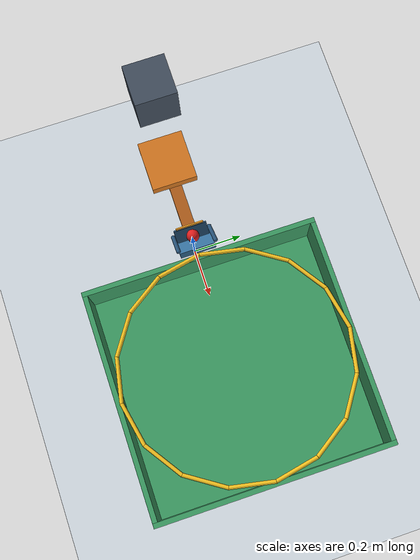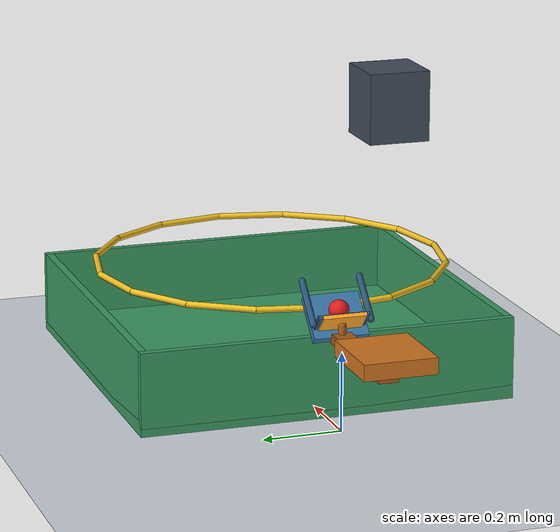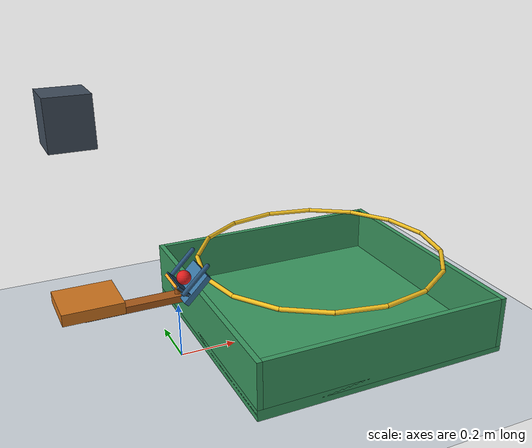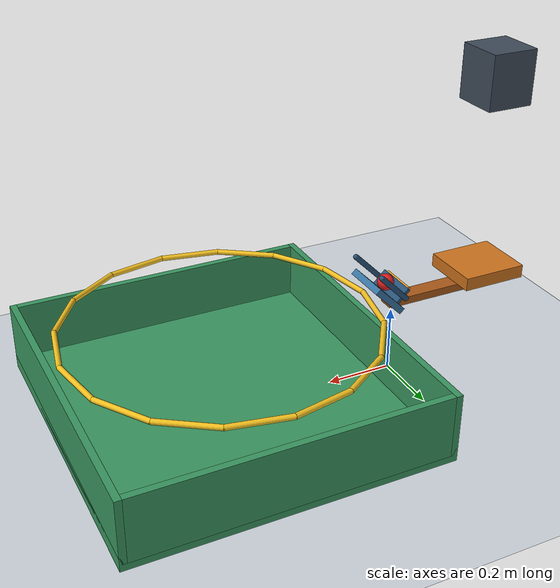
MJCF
<mujoco model="drop_spring_ramp_hoop_cup">
  <compiler angle="radian" autolimits="true"/>
  <option timestep="0.002" gravity="0 0 -9.81" integrator="implicitfast" solver="Newton" iterations="100" cone="elliptic"/>
  <size njmax="300" nconmax="150"/>

  <visual>
    <headlight ambient="0.4 0.4 0.4" diffuse="0.7 0.7 0.7" specular="0.2 0.2 0.2"/>
    <global azimuth="130" elevation="-25"/>
  </visual>

  <worldbody>
    <light name="overhead_light" pos="0.4 -1.5 3" dir="0 0 -1" diffuse="0.8 0.8 0.8"/>
    <camera name="overview" pos="1.45 -2.5 1.65" xyaxes="0.94 0.34 0 -0.16 0.45 0.88"/>
    <geom name="floor" type="plane" size="3 3 0.1" rgba="0.82 0.85 0.88 1" condim="6" friction="0.8 0.01 0.003" solref="0.008 1"/>

    <!-- The block's lower face starts exactly 0.5 m above the loading pad. -->
    <body name="block" pos="-0.30 0 0.88">
      <freejoint name="block_free"/>
      <geom name="block_weight" type="box" size="0.07 0.07 0.08" mass="1.2" rgba="0.25 0.30 0.36 1" friction="0.7 0.005 0.0001" solref="0.006 1"/>
    </body>

    <!-- The offset loading pad and angled striker move together vertically. -->
    <body name="plunger" pos="0 0 0.28">
      <joint name="plunger_slide" type="slide" axis="0 0 1" range="-0.19 0.09" stiffness="800" springref="0" damping="1.2" armature="0.002"/>
      <geom name="plunger_loading_pad" type="box" pos="-0.30 0 0" size="0.10 0.09 0.02" mass="0.045" rgba="0.82 0.46 0.12 1" friction="0.7 0.005 0.0001" solref="0.006 1"/>
      <geom name="plunger_crossbar" type="box" pos="-0.15 0 -0.045" size="0.17 0.025 0.012" mass="0.035" rgba="0.68 0.36 0.10 1"/>
      <geom name="plunger_pad_stem" type="capsule" fromto="-0.30 0 -0.045 -0.30 0 0" size="0.014" mass="0.010" rgba="0.68 0.36 0.10 1"/>
      <geom name="plunger_striker_stem" type="capsule" fromto="0 0 -0.045 0 0 -0.012" size="0.010" mass="0.010" rgba="0.68 0.36 0.10 1"/>
      <geom name="plunger_striking_face" type="box" pos="0.000958 0 -0.003686" quat="0.923879533 0 0.382683432 0" size="0.032 0.055 0.005" mass="0.050" rgba="1 0.65 0.15 1" priority="2" condim="1" friction="0 0 0" solref="0.003 1" solimp="0.95 0.99 0.001"/>
    </body>

    <body name="ball" pos="0.025 0 0.300355339">
      <freejoint name="ball_free"/>
      <geom name="ball_sphere" type="sphere" size="0.025" mass="0.025" rgba="0.88 0.12 0.12 1" condim="6" friction="0.6 0.005 0.0001" solref="0.004 1" solimp="0.95 0.99 0.001"/>
    </body>

    <!-- The backstop retains the ball while the plunger is being compressed. -->
    <body name="ramp" pos="0 0 0">
      <geom name="ramp_surface" type="box" pos="0.049571068 0 0.275428932" quat="0.923879533 0 -0.382683432 0" size="0.060104076 0.07 0.01" rgba="0.22 0.46 0.64 1" priority="1" condim="3" friction="0.5 0.002 0.0001" solref="0.004 1"/>
      <geom name="ramp_backstop" type="box" pos="0.003786797 0 0.279142136" quat="0.923879533 0 0.382683432 0" size="0.027 0.065 0.005" rgba="0.16 0.33 0.48 1" priority="1" condim="3" friction="0.5 0.002 0.0001" solref="0.004 1"/>
      <geom name="ramp_left_rail" type="capsule" fromto="0 -0.073 0.277 0.085 -0.073 0.362" size="0.008" rgba="0.16 0.33 0.48 1" priority="1" condim="3" friction="0.4 0.002 0.0001"/>
      <geom name="ramp_right_rail" type="capsule" fromto="0 0.073 0.277 0.085 0.073 0.362" size="0.008" rgba="0.16 0.33 0.48 1" priority="1" condim="3" friction="0.4 0.002 0.0001"/>
    </body>

    <!-- Horizontal hoop: the launched ball passes downward through its opening. -->
    <body name="hoop" pos="0.55 0 0.285">
      <geom name="hoop_segment_01" type="capsule" fromto="0.45 0 0 0.415746 0.172208 0" size="0.008" rgba="0.95 0.75 0.12 1"/>
      <geom name="hoop_segment_02" type="capsule" fromto="0.415746 0.172208 0 0.318198 0.318198 0" size="0.008" rgba="0.95 0.75 0.12 1"/>
      <geom name="hoop_segment_03" type="capsule" fromto="0.318198 0.318198 0 0.172208 0.415746 0" size="0.008" rgba="0.95 0.75 0.12 1"/>
      <geom name="hoop_segment_04" type="capsule" fromto="0.172208 0.415746 0 0 0.45 0" size="0.008" rgba="0.95 0.75 0.12 1"/>
      <geom name="hoop_segment_05" type="capsule" fromto="0 0.45 0 -0.172208 0.415746 0" size="0.008" rgba="0.95 0.75 0.12 1"/>
      <geom name="hoop_segment_06" type="capsule" fromto="-0.172208 0.415746 0 -0.318198 0.318198 0" size="0.008" rgba="0.95 0.75 0.12 1"/>
      <geom name="hoop_segment_07" type="capsule" fromto="-0.318198 0.318198 0 -0.415746 0.172208 0" size="0.008" rgba="0.95 0.75 0.12 1"/>
      <geom name="hoop_segment_08" type="capsule" fromto="-0.415746 0.172208 0 -0.45 0 0" size="0.008" rgba="0.95 0.75 0.12 1"/>
      <geom name="hoop_segment_09" type="capsule" fromto="-0.45 0 0 -0.415746 -0.172208 0" size="0.008" rgba="0.95 0.75 0.12 1"/>
      <geom name="hoop_segment_10" type="capsule" fromto="-0.415746 -0.172208 0 -0.318198 -0.318198 0" size="0.008" rgba="0.95 0.75 0.12 1"/>
      <geom name="hoop_segment_11" type="capsule" fromto="-0.318198 -0.318198 0 -0.172208 -0.415746 0" size="0.008" rgba="0.95 0.75 0.12 1"/>
      <geom name="hoop_segment_12" type="capsule" fromto="-0.172208 -0.415746 0 0 -0.45 0" size="0.008" rgba="0.95 0.75 0.12 1"/>
      <geom name="hoop_segment_13" type="capsule" fromto="0 -0.45 0 0.172208 -0.415746 0" size="0.008" rgba="0.95 0.75 0.12 1"/>
      <geom name="hoop_segment_14" type="capsule" fromto="0.172208 -0.415746 0 0.318198 -0.318198 0" size="0.008" rgba="0.95 0.75 0.12 1"/>
      <geom name="hoop_segment_15" type="capsule" fromto="0.318198 -0.318198 0 0.415746 -0.172208 0" size="0.008" rgba="0.95 0.75 0.12 1"/>
      <geom name="hoop_segment_16" type="capsule" fromto="0.415746 -0.172208 0 0.45 0 0" size="0.008" rgba="0.95 0.75 0.12 1"/>
    </body>

    <!-- An open catching cup with dissipative sliding and rolling contact. -->
    <body name="cup" pos="0.55 0 0">
      <geom name="cup_bottom" type="box" pos="0 0 0.03" size="0.47 0.48 0.02" rgba="0.23 0.60 0.38 1" priority="3" condim="6" friction="1.0 0.03 0.008" solref="0.008 1" solimp="0.95 0.99 0.001"/>
      <geom name="cup_back_wall" type="box" pos="0.46 0 0.125" size="0.01 0.48 0.095" rgba="0.23 0.60 0.38 1" priority="3" condim="6" friction="1.0 0.03 0.008" solref="0.008 1"/>
      <geom name="cup_front_wall" type="box" pos="-0.46 0 0.125" size="0.01 0.48 0.095" rgba="0.23 0.60 0.38 1" priority="3" condim="6" friction="1.0 0.03 0.008" solref="0.008 1"/>
      <geom name="cup_left_wall" type="box" pos="0 -0.47 0.125" size="0.45 0.01 0.095" rgba="0.23 0.60 0.38 1" priority="3" condim="6" friction="1.0 0.03 0.008" solref="0.008 1"/>
      <geom name="cup_right_wall" type="box" pos="0 0.47 0.125" size="0.45 0.01 0.095" rgba="0.23 0.60 0.38 1" priority="3" condim="6" friction="1.0 0.03 0.008" solref="0.008 1"/>
    </body>
  </worldbody>

  <contact>
    <exclude name="striker_ramp_clearance" body1="plunger" body2="ramp"/>
  </contact>

  <keyframe>
    <key name="start" qpos="-0.30 0 0.88 1 0 0 0 0 0.025 0 0.300355339 1 0 0 0"/>
  </keyframe>
</mujoco>
